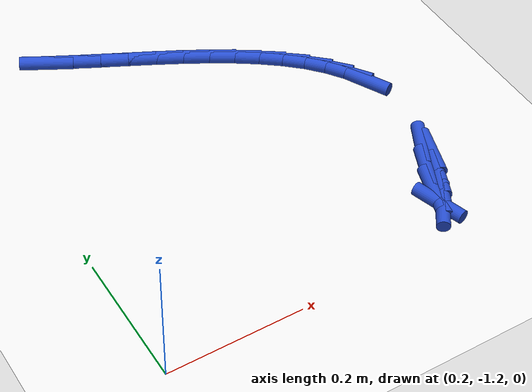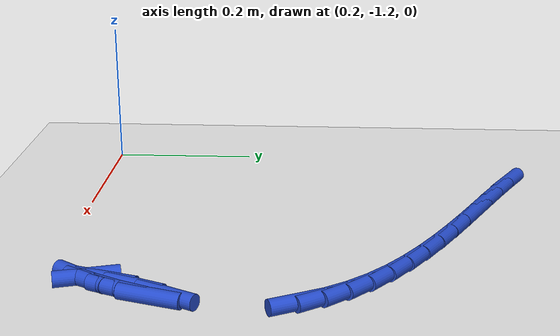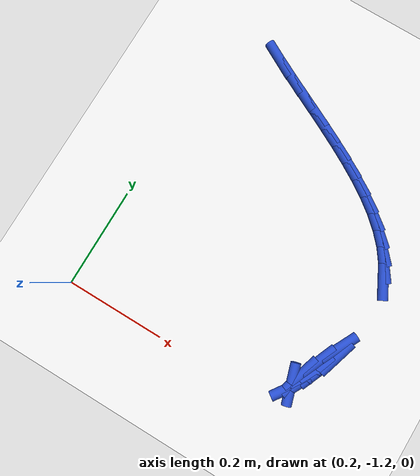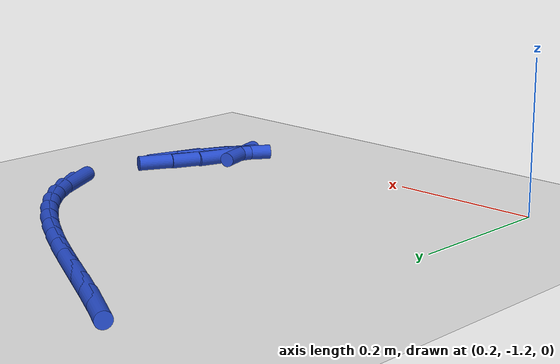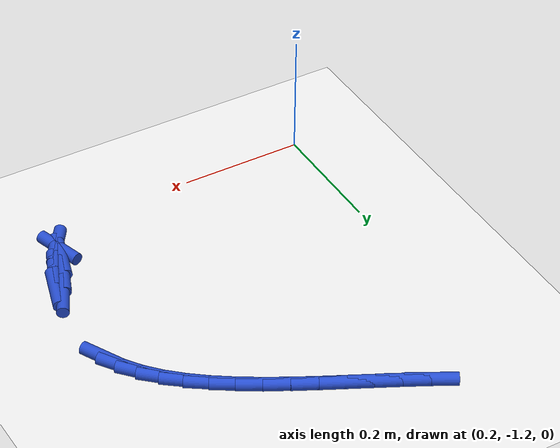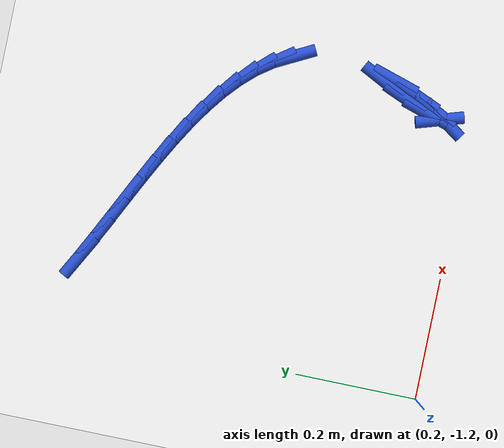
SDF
<sdf version="1.6">
 <world name="default">
  <model name="ground_plane">
   <static>1</static>
   <link name="link">
    <collision name="collision">
     <geometry><plane><normal>0 0 1</normal><size>100 100</size></plane></geometry>
     <surface><friction><ode><mu>100</mu><mu2>50</mu2></ode></friction></surface>
    </collision>
    <visual name="visual">
     <cast_shadows>0</cast_shadows>
     <geometry><plane><normal>0 0 1</normal><size>100 100</size></plane></geometry>
     <material>
      <script><uri>file://media/materials/scripts/gazebo.material</uri><name>Gazebo/WhiteGlow</name></script>
     </material>
    </visual>
   </link>
  </model>
  <model name="line">
   <link name="link_214">
    <pose>0.6978552504473632 -1.0433434025176522 0.01 0 1.57 1.1000840676725712</pose>
    <collision name="collision">
     <geometry><cylinder><radius>0.01</radius><length>0.08</length></cylinder></geometry>
    </collision>
    <visual name="visual">
     <material>
      <script><name>Gazebo/Blue</name><uri>file://media/materials/scripts/gazebo.material</uri></script>
     </material>
     <geometry><cylinder><radius>0.01</radius><length>0.08</length></cylinder></geometry>
    </visual>
   </link>
   <link name="link_215">
    <pose>0.6768026573940219 -1.084715291381398 0.01 0 1.57 1.1729387985091693</pose>
    <collision name="collision">
     <geometry><cylinder><radius>0.01</radius><length>0.08</length></cylinder></geometry>
    </collision>
    <visual name="visual">
     <material>
      <script><name>Gazebo/Blue</name><uri>file://media/materials/scripts/gazebo.material</uri></script>
     </material>
     <geometry><cylinder><radius>0.01</radius><length>0.08</length></cylinder></geometry>
    </visual>
   </link>
   <link name="link_216">
    <pose>0.6615770868695676 -1.1209433557237918 0.01 0 1.57 1.2682355592931909</pose>
    <collision name="collision">
     <geometry><cylinder><radius>0.01</radius><length>0.08</length></cylinder></geometry>
    </collision>
    <visual name="visual">
     <material>
      <script><name>Gazebo/Blue</name><uri>file://media/materials/scripts/gazebo.material</uri></script>
     </material>
     <geometry><cylinder><radius>0.01</radius><length>0.08</length></cylinder></geometry>
    </visual>
   </link>
   <link name="link_217">
    <pose>0.6539681578096563 -1.1453196760144506 0.01 0 1.57 -1.2711138816090917</pose>
    <collision name="collision">
     <geometry><cylinder><radius>0.01</radius><length>0.08</length></cylinder></geometry>
    </collision>
    <visual name="visual">
     <material>
      <script><name>Gazebo/Blue</name><uri>file://media/materials/scripts/gazebo.material</uri></script>
     </material>
     <geometry><cylinder><radius>0.01</radius><length>0.08</length></cylinder></geometry>
    </visual>
   </link>
   <link name="link_218">
    <pose>0.6557654576115111 -1.1511363996727277 0.01 0 1.57 0.9592929861360149</pose>
    <collision name="collision">
     <geometry><cylinder><radius>0.01</radius><length>0.08</length></cylinder></geometry>
    </collision>
    <visual name="visual">
     <material>
      <script><name>Gazebo/Blue</name><uri>file://media/materials/scripts/gazebo.material</uri></script>
     </material>
     <geometry><cylinder><radius>0.01</radius><length>0.08</length></cylinder></geometry>
    </visual>
   </link>
   <link name="link_219">
    <pose>0.6674381219930217 -1.1344887267653636 0.01 0 1.57 1.0876724140886376</pose>
    <collision name="collision">
     <geometry><cylinder><radius>0.01</radius><length>0.08</length></cylinder></geometry>
    </collision>
    <visual name="visual">
     <material>
      <script><name>Gazebo/Blue</name><uri>file://media/materials/scripts/gazebo.material</uri></script>
     </material>
     <geometry><cylinder><radius>0.01</radius><length>0.08</length></cylinder></geometry>
    </visual>
   </link>
   <link name="link_220">
    <pose>0.68462260282809 -1.1017306706537415 0.01 0 1.57 1.165640585132241</pose>
    <collision name="collision">
     <geometry><cylinder><radius>0.01</radius><length>0.08</length></cylinder></geometry>
    </collision>
    <visual name="visual">
     <material>
      <script><name>Gazebo/Blue</name><uri>file://media/materials/scripts/gazebo.material</uri></script>
     </material>
     <geometry><cylinder><radius>0.01</radius><length>0.08</length></cylinder></geometry>
    </visual>
   </link>
   <link name="link_221">
    <pose>0.7018500625281042 -1.0615625513475797 0.01 0 1.57 1.2696419726380903</pose>
    <collision name="collision">
     <geometry><cylinder><radius>0.01</radius><length>0.08</length></cylinder></geometry>
    </collision>
    <visual name="visual">
     <material>
      <script><name>Gazebo/Blue</name><uri>file://media/materials/scripts/gazebo.material</uri></script>
     </material>
     <geometry><cylinder><radius>0.01</radius><length>0.08</length></cylinder></geometry>
    </visual>
   </link>
   <link name="link_226">
    <pose>0.7061270922929891 -0.8892773917724921 0.01 0 1.57 -1.0932522949744314</pose>
    <collision name="collision">
     <geometry><cylinder><radius>0.01</radius><length>0.08</length></cylinder></geometry>
    </collision>
    <visual name="visual">
     <material>
      <script><name>Gazebo/Blue</name><uri>file://media/materials/scripts/gazebo.material</uri></script>
     </material>
     <geometry><cylinder><radius>0.01</radius><length>0.08</length></cylinder></geometry>
    </visual>
   </link>
   <link name="link_227">
    <pose>0.6918318720949171 -0.8616534149368995 0.01 0 1.57 -0.9516384399930543</pose>
    <collision name="collision">
     <geometry><cylinder><radius>0.01</radius><length>0.08</length></cylinder></geometry>
    </collision>
    <visual name="visual">
     <material>
      <script><name>Gazebo/Blue</name><uri>file://media/materials/scripts/gazebo.material</uri></script>
     </material>
     <geometry><cylinder><radius>0.01</radius><length>0.08</length></cylinder></geometry>
    </visual>
   </link>
   <link name="link_228">
    <pose>0.6734430680183898 -0.835849581581957 0.01 0 1.57 -0.8309399937300629</pose>
    <collision name="collision">
     <geometry><cylinder><radius>0.01</radius><length>0.08</length></cylinder></geometry>
    </collision>
    <visual name="visual">
     <material>
      <script><name>Gazebo/Blue</name><uri>file://media/materials/scripts/gazebo.material</uri></script>
     </material>
     <geometry><cylinder><radius>0.01</radius><length>0.08</length></cylinder></geometry>
    </visual>
   </link>
   <link name="link_229">
    <pose>0.6513708603033596 -0.8116695025889897 0.01 0 1.57 -0.7315455563199018</pose>
    <collision name="collision">
     <geometry><cylinder><radius>0.01</radius><length>0.08</length></cylinder></geometry>
    </collision>
    <visual name="visual">
     <material>
      <script><name>Gazebo/Blue</name><uri>file://media/materials/scripts/gazebo.material</uri></script>
     </material>
     <geometry><cylinder><radius>0.01</radius><length>0.08</length></cylinder></geometry>
    </visual>
   </link>
   <link name="link_230">
    <pose>0.6260254291897798 -0.7889167888393258 0.01 0 1.57 -0.651739563981055</pose>
    <collision name="collision">
     <geometry><cylinder><radius>0.01</radius><length>0.08</length></cylinder></geometry>
    </collision>
    <visual name="visual">
     <material>
      <script><name>Gazebo/Blue</name><uri>file://media/materials/scripts/gazebo.material</uri></script>
     </material>
     <geometry><cylinder><radius>0.01</radius><length>0.08</length></cylinder></geometry>
    </visual>
   </link>
   <link name="link_231">
    <pose>0.5978169549176028 -0.7673950512142907 0.01 0 1.57 -0.5890463699903423</pose>
    <collision name="collision">
     <geometry><cylinder><radius>0.01</radius><length>0.08</length></cylinder></geometry>
    </collision>
    <visual name="visual">
     <material>
      <script><name>Gazebo/Blue</name><uri>file://media/materials/scripts/gazebo.material</uri></script>
     </material>
     <geometry><cylinder><radius>0.01</radius><length>0.08</length></cylinder></geometry>
    </visual>
   </link>
   <link name="link_232">
    <pose>0.5671556177267809 -0.7469079005952106 0.01 0 1.57 -0.541016011483639</pose>
    <collision name="collision">
     <geometry><cylinder><radius>0.01</radius><length>0.08</length></cylinder></geometry>
    </collision>
    <visual name="visual">
     <material>
      <script><name>Gazebo/Blue</name><uri>file://media/materials/scripts/gazebo.material</uri></script>
     </material>
     <geometry><cylinder><radius>0.01</radius><length>0.08</length></cylinder></geometry>
    </visual>
   </link>
   <link name="link_233">
    <pose>0.534451597857267 -0.7272589478634126 0.01 0 1.57 -0.5055682647611695</pose>
    <collision name="collision">
     <geometry><cylinder><radius>0.01</radius><length>0.08</length></cylinder></geometry>
    </collision>
    <visual name="visual">
     <material>
      <script><name>Gazebo/Blue</name><uri>file://media/materials/scripts/gazebo.material</uri></script>
     </material>
     <geometry><cylinder><radius>0.01</radius><length>0.08</length></cylinder></geometry>
    </visual>
   </link>
   <link name="link_234">
    <pose>0.5001150755490136 -0.7082518039002224 0.01 0 1.57 -0.4810924755873202</pose>
    <collision name="collision">
     <geometry><cylinder><radius>0.01</radius><length>0.08</length></cylinder></geometry>
    </collision>
    <visual name="visual">
     <material>
      <script><name>Gazebo/Blue</name><uri>file://media/materials/scripts/gazebo.material</uri></script>
     </material>
     <geometry><cylinder><radius>0.01</radius><length>0.08</length></cylinder></geometry>
    </visual>
   </link>
   <link name="link_235">
    <pose>0.46455623104197313 -0.6896900795869662 0.01 0 1.57 -0.4664415397826244</pose>
    <collision name="collision">
     <geometry><cylinder><radius>0.01</radius><length>0.08</length></cylinder></geometry>
    </collision>
    <visual name="visual">
     <material>
      <script><name>Gazebo/Blue</name><uri>file://media/materials/scripts/gazebo.material</uri></script>
     </material>
     <geometry><cylinder><radius>0.01</radius><length>0.08</length></cylinder></geometry>
    </visual>
   </link>
   <link name="link_236">
    <pose>0.42818524457609736 -0.6713773858049703 0.01 0 1.57 -0.4608935085298228</pose>
    <collision name="collision">
     <geometry><cylinder><radius>0.01</radius><length>0.08</length></cylinder></geometry>
    </collision>
    <visual name="visual">
     <material>
      <script><name>Gazebo/Blue</name><uri>file://media/materials/scripts/gazebo.material</uri></script>
     </material>
     <geometry><cylinder><radius>0.01</radius><length>0.08</length></cylinder></geometry>
    </visual>
   </link>
   <link name="link_237">
    <pose>0.3914122963913407 -0.6531173334355618 0.01 0 1.57 -0.46411393081377894</pose>
    <collision name="collision">
     <geometry><cylinder><radius>0.01</radius><length>0.08</length></cylinder></geometry>
    </collision>
    <visual name="visual">
     <material>
      <script><name>Gazebo/Blue</name><uri>file://media/materials/scripts/gazebo.material</uri></script>
     </material>
     <geometry><cylinder><radius>0.01</radius><length>0.08</length></cylinder></geometry>
    </visual>
   </link>
   <link name="link_238">
    <pose>0.3546475667276549 -0.6347135333600665 0.01 0 1.57 -0.4761314897583389</pose>
    <collision name="collision">
     <geometry><cylinder><radius>0.01</radius><length>0.08</length></cylinder></geometry>
    </collision>
    <visual name="visual">
     <material>
      <script><name>Gazebo/Blue</name><uri>file://media/materials/scripts/gazebo.material</uri></script>
     </material>
     <geometry><cylinder><radius>0.01</radius><length>0.08</length></cylinder></geometry>
    </visual>
   </link>
   <link name="link_239">
    <pose>0.3183012358249924 -0.6159695964598108 0.01 0 1.57 -0.49732961460308805</pose>
    <collision name="collision">
     <geometry><cylinder><radius>0.01</radius><length>0.08</length></cylinder></geometry>
    </collision>
    <visual name="visual">
     <material>
      <script><name>Gazebo/Blue</name><uri>file://media/materials/scripts/gazebo.material</uri></script>
     </material>
     <geometry><cylinder><radius>0.01</radius><length>0.08</length></cylinder></geometry>
    </visual>
   </link>
  </model>
 </world>
</sdf>
